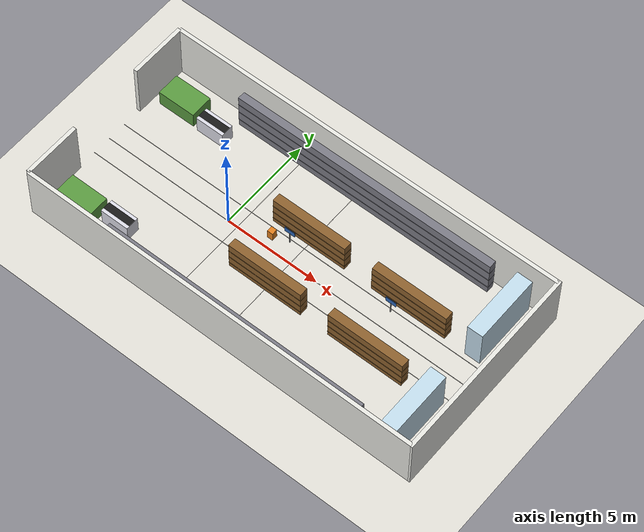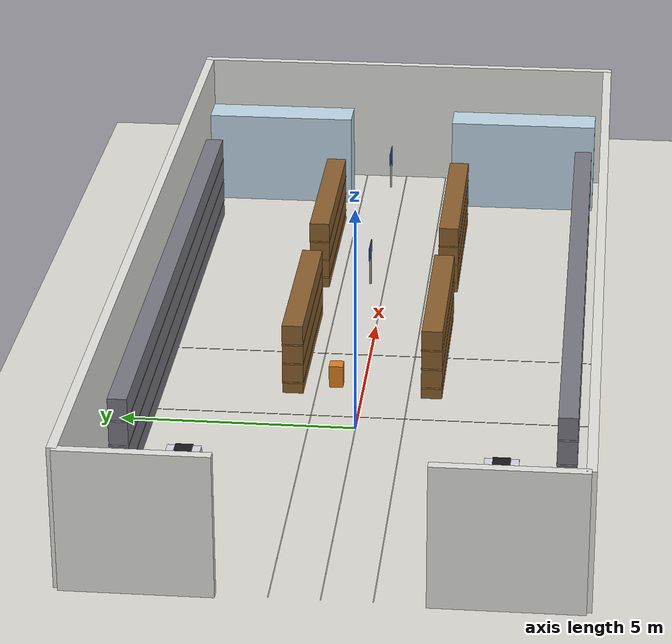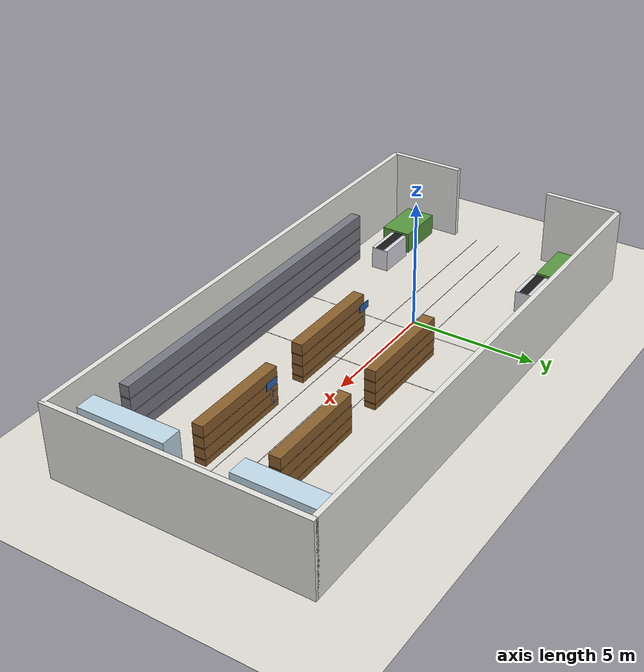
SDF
<?xml version="1.0" ?>
<sdf version="1.10">
  <world name="supermarket">

    <physics name="1ms" type="ignored">
      <max_step_size>0.004</max_step_size>
      <real_time_factor>1.0</real_time_factor>
      <real_time_update_rate>250</real_time_update_rate>
    </physics>

    <plugin filename="gz-sim-physics-system"           name="gz::sim::systems::Physics"/>
    <plugin filename="gz-sim-user-commands-system"     name="gz::sim::systems::UserCommands"/>
    <plugin filename="gz-sim-scene-broadcaster-system" name="gz::sim::systems::SceneBroadcaster"/>
    <plugin filename="gz-sim-sensors-system"           name="gz::sim::systems::Sensors">
      <render_engine>ogre2</render_engine>
    </plugin>
    <plugin filename="gz-sim-contact-system"           name="gz::sim::systems::Contact"/>

    <!-- ── Lighting ──────────────────────────────────────────────────────── -->
    <light type="directional" name="ambient_fill">
      <cast_shadows>false</cast_shadows>
      <pose>0 0 10 0 0 0</pose>
      <diffuse>0.45 0.45 0.45 1</diffuse>
      <specular>0.05 0.05 0.05 1</specular>
      <direction>0 0 -1</direction>
      <attenuation><range>1000</range><constant>0.9</constant><linear>0.01</linear><quadratic>0.001</quadratic></attenuation>
    </light>

    <!-- Ceiling fluorescent strips: 3 along centre + 6 in outer aisles -->
    <light type="point" name="ceil_00"><pose>-4  0   2.8 0 0 0</pose><diffuse>1.0 0.98 0.93 1</diffuse><specular>0.15 0.15 0.15 1</specular><cast_shadows>false</cast_shadows><attenuation><range>14</range><constant>0.35</constant><linear>0.06</linear><quadratic>0.010</quadratic></attenuation></light>
    <light type="point" name="ceil_01"><pose> 2  0   2.8 0 0 0</pose><diffuse>1.0 0.98 0.93 1</diffuse><specular>0.15 0.15 0.15 1</specular><cast_shadows>false</cast_shadows><attenuation><range>14</range><constant>0.35</constant><linear>0.06</linear><quadratic>0.010</quadratic></attenuation></light>
    <light type="point" name="ceil_02"><pose> 8  0   2.8 0 0 0</pose><diffuse>1.0 0.98 0.93 1</diffuse><specular>0.15 0.15 0.15 1</specular><cast_shadows>false</cast_shadows><attenuation><range>14</range><constant>0.35</constant><linear>0.06</linear><quadratic>0.010</quadratic></attenuation></light>
    <light type="point" name="ceil_03"><pose>-4  3.5 2.8 0 0 0</pose><diffuse>1.0 0.98 0.93 1</diffuse><specular>0.15 0.15 0.15 1</specular><cast_shadows>false</cast_shadows><attenuation><range>11</range><constant>0.40</constant><linear>0.07</linear><quadratic>0.012</quadratic></attenuation></light>
    <light type="point" name="ceil_04"><pose> 2  3.5 2.8 0 0 0</pose><diffuse>1.0 0.98 0.93 1</diffuse><specular>0.15 0.15 0.15 1</specular><cast_shadows>false</cast_shadows><attenuation><range>11</range><constant>0.40</constant><linear>0.07</linear><quadratic>0.012</quadratic></attenuation></light>
    <light type="point" name="ceil_05"><pose> 8  3.5 2.8 0 0 0</pose><diffuse>1.0 0.98 0.93 1</diffuse><specular>0.15 0.15 0.15 1</specular><cast_shadows>false</cast_shadows><attenuation><range>11</range><constant>0.40</constant><linear>0.07</linear><quadratic>0.012</quadratic></attenuation></light>
    <light type="point" name="ceil_06"><pose>-4 -3.5 2.8 0 0 0</pose><diffuse>1.0 0.98 0.93 1</diffuse><specular>0.15 0.15 0.15 1</specular><cast_shadows>false</cast_shadows><attenuation><range>11</range><constant>0.40</constant><linear>0.07</linear><quadratic>0.012</quadratic></attenuation></light>
    <light type="point" name="ceil_07"><pose> 2 -3.5 2.8 0 0 0</pose><diffuse>1.0 0.98 0.93 1</diffuse><specular>0.15 0.15 0.15 1</specular><cast_shadows>false</cast_shadows><attenuation><range>11</range><constant>0.40</constant><linear>0.07</linear><quadratic>0.012</quadratic></attenuation></light>
    <light type="point" name="ceil_08"><pose> 8 -3.5 2.8 0 0 0</pose><diffuse>1.0 0.98 0.93 1</diffuse><specular>0.15 0.15 0.15 1</specular><cast_shadows>false</cast_shadows><attenuation><range>11</range><constant>0.40</constant><linear>0.07</linear><quadratic>0.012</quadratic></attenuation></light>

    <!-- ── Ground (cream vinyl tile) ─────────────────────────────────────── -->
    <model name="ground_plane">
      <static>true</static>
      <link name="link">
        <collision name="col">
          <geometry><plane><normal>0 0 1</normal><size>100 100</size></plane></geometry>
          <surface><friction><ode><mu>0.6</mu><mu2>0.6</mu2></ode></friction></surface>
        </collision>
        <visual name="vis">
          <geometry><plane><normal>0 0 1</normal><size>100 100</size></plane></geometry>
          <material><ambient>0.88 0.87 0.84 1</ambient><diffuse>0.88 0.87 0.84 1</diffuse></material>
        </visual>
      </link>
    </model>

    <!-- Tile grout lines (visual only, no collision) -->
    <model name="grout_y0"><static>true</static><pose>3.5  1.0 0.001 0 0 0</pose><link name="l"><visual name="v"><geometry><box><size>21.0 0.02 0.001</size></box></geometry><material><ambient>0.73 0.72 0.69 1</ambient><diffuse>0.73 0.72 0.69 1</diffuse></material></visual></link></model>
    <model name="grout_y1"><static>true</static><pose>3.5  0.0 0.001 0 0 0</pose><link name="l"><visual name="v"><geometry><box><size>21.0 0.02 0.001</size></box></geometry><material><ambient>0.73 0.72 0.69 1</ambient><diffuse>0.73 0.72 0.69 1</diffuse></material></visual></link></model>
    <model name="grout_y2"><static>true</static><pose>3.5 -1.0 0.001 0 0 0</pose><link name="l"><visual name="v"><geometry><box><size>21.0 0.02 0.001</size></box></geometry><material><ambient>0.73 0.72 0.69 1</ambient><diffuse>0.73 0.72 0.69 1</diffuse></material></visual></link></model>
    <model name="grout_x0"><static>true</static><pose>0.5 0 0.001 0 0 1.5708</pose><link name="l"><visual name="v"><geometry><box><size>10.0 0.02 0.001</size></box></geometry><material><ambient>0.73 0.72 0.69 1</ambient><diffuse>0.73 0.72 0.69 1</diffuse></material></visual></link></model>
    <model name="grout_x1"><static>true</static><pose>3.5 0 0.001 0 0 1.5708</pose><link name="l"><visual name="v"><geometry><box><size>10.0 0.02 0.001</size></box></geometry><material><ambient>0.73 0.72 0.69 1</ambient><diffuse>0.73 0.72 0.69 1</diffuse></material></visual></link></model>

    <!-- ── Walls  (X∈[-7,14]  Y∈[-5,5]  H=3.0 m) ────────────────────────── -->
    <model name="left_wall">
      <static>true</static><pose>3.5 5.0 1.5 0 0 0</pose>
      <link name="link">
        <collision name="col"><geometry><box><size>21.0 0.2 3.0</size></box></geometry></collision>
        <visual name="vis"><geometry><box><size>21.0 0.2 3.0</size></box></geometry><material><ambient>0.90 0.90 0.88 1</ambient><diffuse>0.90 0.90 0.88 1</diffuse></material></visual>
      </link>
    </model>

    <model name="right_wall">
      <static>true</static><pose>3.5 -5.0 1.5 0 0 0</pose>
      <link name="link">
        <collision name="col"><geometry><box><size>21.0 0.2 3.0</size></box></geometry></collision>
        <visual name="vis"><geometry><box><size>21.0 0.2 3.0</size></box></geometry><material><ambient>0.90 0.90 0.88 1</ambient><diffuse>0.90 0.90 0.88 1</diffuse></material></visual>
      </link>
    </model>

    <model name="back_wall">
      <static>true</static><pose>14.0 0.0 1.5 0 0 0</pose>
      <link name="link">
        <collision name="col"><geometry><box><size>0.2 10.2 3.0</size></box></geometry></collision>
        <visual name="vis"><geometry><box><size>0.2 10.2 3.0</size></box></geometry><material><ambient>0.90 0.90 0.88 1</ambient><diffuse>0.90 0.90 0.88 1</diffuse></material></visual>
      </link>
    </model>

    <!-- Front wall: two panels with 4 m entrance gap centred at y=0 -->
    <model name="front_wall_left">
      <static>true</static><pose>-7.0 3.5 1.5 0 0 0</pose>
      <link name="link">
        <collision name="col"><geometry><box><size>0.2 3.0 3.0</size></box></geometry></collision>
        <visual name="vis"><geometry><box><size>0.2 3.0 3.0</size></box></geometry><material><ambient>0.90 0.90 0.88 1</ambient><diffuse>0.90 0.90 0.88 1</diffuse></material></visual>
      </link>
    </model>

    <model name="front_wall_right">
      <static>true</static><pose>-7.0 -3.5 1.5 0 0 0</pose>
      <link name="link">
        <collision name="col"><geometry><box><size>0.2 3.0 3.0</size></box></geometry></collision>
        <visual name="vis"><geometry><box><size>0.2 3.0 3.0</size></box></geometry><material><ambient>0.90 0.90 0.88 1</ambient><diffuse>0.90 0.90 0.88 1</diffuse></material></visual>
      </link>
    </model>

    <!-- ── Main aisle shelves ─────────────────────────────────────────────── -->
    <!--  Row A  x=3.5  (4.0 m long x 0.45 m deep x 1.6 m tall)              -->
    <!--  AABB: x∈[1.5,5.5]  y∈[1.275,1.725] and [-1.725,-1.275]             -->

    <model name="shelf_A_left">
      <static>true</static><pose>3.5 1.5 0.8 0 0 0</pose>
      <link name="link">
        <collision name="col"><geometry><box><size>4.0 0.45 1.6</size></box></geometry></collision>
        <visual name="vis"><geometry><box><size>4.0 0.45 1.6</size></box></geometry><material><ambient>0.55 0.38 0.18 1</ambient><diffuse>0.55 0.38 0.18 1</diffuse></material></visual>
      </link>
    </model>
    <model name="shelf_A_left_b1"><static>true</static><pose>3.5 1.5 0.25 0 0 0</pose><link name="l"><visual name="v"><geometry><box><size>4.02 0.46 0.03</size></box></geometry><material><ambient>0.70 0.52 0.25 1</ambient><diffuse>0.70 0.52 0.25 1</diffuse></material></visual></link></model>
    <model name="shelf_A_left_b2"><static>true</static><pose>3.5 1.5 0.70 0 0 0</pose><link name="l"><visual name="v"><geometry><box><size>4.02 0.46 0.03</size></box></geometry><material><ambient>0.70 0.52 0.25 1</ambient><diffuse>0.70 0.52 0.25 1</diffuse></material></visual></link></model>
    <model name="shelf_A_left_b3"><static>true</static><pose>3.5 1.5 1.15 0 0 0</pose><link name="l"><visual name="v"><geometry><box><size>4.02 0.46 0.03</size></box></geometry><material><ambient>0.70 0.52 0.25 1</ambient><diffuse>0.70 0.52 0.25 1</diffuse></material></visual></link></model>

    <model name="shelf_A_right">
      <static>true</static><pose>3.5 -1.5 0.8 0 0 0</pose>
      <link name="link">
        <collision name="col"><geometry><box><size>4.0 0.45 1.6</size></box></geometry></collision>
        <visual name="vis"><geometry><box><size>4.0 0.45 1.6</size></box></geometry><material><ambient>0.55 0.38 0.18 1</ambient><diffuse>0.55 0.38 0.18 1</diffuse></material></visual>
      </link>
    </model>
    <model name="shelf_A_right_b1"><static>true</static><pose>3.5 -1.5 0.25 0 0 0</pose><link name="l"><visual name="v"><geometry><box><size>4.02 0.46 0.03</size></box></geometry><material><ambient>0.70 0.52 0.25 1</ambient><diffuse>0.70 0.52 0.25 1</diffuse></material></visual></link></model>
    <model name="shelf_A_right_b2"><static>true</static><pose>3.5 -1.5 0.70 0 0 0</pose><link name="l"><visual name="v"><geometry><box><size>4.02 0.46 0.03</size></box></geometry><material><ambient>0.70 0.52 0.25 1</ambient><diffuse>0.70 0.52 0.25 1</diffuse></material></visual></link></model>
    <model name="shelf_A_right_b3"><static>true</static><pose>3.5 -1.5 1.15 0 0 0</pose><link name="l"><visual name="v"><geometry><box><size>4.02 0.46 0.03</size></box></geometry><material><ambient>0.70 0.52 0.25 1</ambient><diffuse>0.70 0.52 0.25 1</diffuse></material></visual></link></model>

    <!--  Row B  x=9.0  (same footprint)                                       -->
    <!--  AABB: x∈[7.0,11.0]  y∈[1.275,1.725] and [-1.725,-1.275]            -->

    <model name="shelf_B_left">
      <static>true</static><pose>9.0 1.5 0.8 0 0 0</pose>
      <link name="link">
        <collision name="col"><geometry><box><size>4.0 0.45 1.6</size></box></geometry></collision>
        <visual name="vis"><geometry><box><size>4.0 0.45 1.6</size></box></geometry><material><ambient>0.55 0.38 0.18 1</ambient><diffuse>0.55 0.38 0.18 1</diffuse></material></visual>
      </link>
    </model>
    <model name="shelf_B_left_b1"><static>true</static><pose>9.0 1.5 0.25 0 0 0</pose><link name="l"><visual name="v"><geometry><box><size>4.02 0.46 0.03</size></box></geometry><material><ambient>0.70 0.52 0.25 1</ambient><diffuse>0.70 0.52 0.25 1</diffuse></material></visual></link></model>
    <model name="shelf_B_left_b2"><static>true</static><pose>9.0 1.5 0.70 0 0 0</pose><link name="l"><visual name="v"><geometry><box><size>4.02 0.46 0.03</size></box></geometry><material><ambient>0.70 0.52 0.25 1</ambient><diffuse>0.70 0.52 0.25 1</diffuse></material></visual></link></model>
    <model name="shelf_B_left_b3"><static>true</static><pose>9.0 1.5 1.15 0 0 0</pose><link name="l"><visual name="v"><geometry><box><size>4.02 0.46 0.03</size></box></geometry><material><ambient>0.70 0.52 0.25 1</ambient><diffuse>0.70 0.52 0.25 1</diffuse></material></visual></link></model>

    <model name="shelf_B_right">
      <static>true</static><pose>9.0 -1.5 0.8 0 0 0</pose>
      <link name="link">
        <collision name="col"><geometry><box><size>4.0 0.45 1.6</size></box></geometry></collision>
        <visual name="vis"><geometry><box><size>4.0 0.45 1.6</size></box></geometry><material><ambient>0.55 0.38 0.18 1</ambient><diffuse>0.55 0.38 0.18 1</diffuse></material></visual>
      </link>
    </model>
    <model name="shelf_B_right_b1"><static>true</static><pose>9.0 -1.5 0.25 0 0 0</pose><link name="l"><visual name="v"><geometry><box><size>4.02 0.46 0.03</size></box></geometry><material><ambient>0.70 0.52 0.25 1</ambient><diffuse>0.70 0.52 0.25 1</diffuse></material></visual></link></model>
    <model name="shelf_B_right_b2"><static>true</static><pose>9.0 -1.5 0.70 0 0 0</pose><link name="l"><visual name="v"><geometry><box><size>4.02 0.46 0.03</size></box></geometry><material><ambient>0.70 0.52 0.25 1</ambient><diffuse>0.70 0.52 0.25 1</diffuse></material></visual></link></model>
    <model name="shelf_B_right_b3"><static>true</static><pose>9.0 -1.5 1.15 0 0 0</pose><link name="l"><visual name="v"><geometry><box><size>4.02 0.46 0.03</size></box></geometry><material><ambient>0.70 0.52 0.25 1</ambient><diffuse>0.70 0.52 0.25 1</diffuse></material></visual></link></model>

    <!-- ── Perimeter wall shelves  (y≈±4.5, x∈[-3,11], 14 m long) ──────────
         AABB left:  x∈[-3.0,11.0]  y∈[4.3,4.7]
         AABB right: x∈[-3.0,11.0]  y∈[-4.7,-4.3]                           -->

    <model name="perim_shelf_left">
      <static>true</static><pose>4.0 4.5 1.0 0 0 0</pose>
      <link name="link">
        <collision name="col"><geometry><box><size>14.0 0.4 2.0</size></box></geometry></collision>
        <visual name="vis"><geometry><box><size>14.0 0.4 2.0</size></box></geometry><material><ambient>0.48 0.48 0.52 1</ambient><diffuse>0.48 0.48 0.52 1</diffuse></material></visual>
      </link>
    </model>
    <model name="perim_l_b1"><static>true</static><pose>4.0 4.5 0.40 0 0 0</pose><link name="l"><visual name="v"><geometry><box><size>14.02 0.41 0.03</size></box></geometry><material><ambient>0.65 0.65 0.70 1</ambient><diffuse>0.65 0.65 0.70 1</diffuse></material></visual></link></model>
    <model name="perim_l_b2"><static>true</static><pose>4.0 4.5 0.95 0 0 0</pose><link name="l"><visual name="v"><geometry><box><size>14.02 0.41 0.03</size></box></geometry><material><ambient>0.65 0.65 0.70 1</ambient><diffuse>0.65 0.65 0.70 1</diffuse></material></visual></link></model>
    <model name="perim_l_b3"><static>true</static><pose>4.0 4.5 1.50 0 0 0</pose><link name="l"><visual name="v"><geometry><box><size>14.02 0.41 0.03</size></box></geometry><material><ambient>0.65 0.65 0.70 1</ambient><diffuse>0.65 0.65 0.70 1</diffuse></material></visual></link></model>

    <model name="perim_shelf_right">
      <static>true</static><pose>4.0 -4.5 1.0 0 0 0</pose>
      <link name="link">
        <collision name="col"><geometry><box><size>14.0 0.4 2.0</size></box></geometry></collision>
        <visual name="vis"><geometry><box><size>14.0 0.4 2.0</size></box></geometry><material><ambient>0.48 0.48 0.52 1</ambient><diffuse>0.48 0.48 0.52 1</diffuse></material></visual>
      </link>
    </model>
    <model name="perim_r_b1"><static>true</static><pose>4.0 -4.5 0.40 0 0 0</pose><link name="l"><visual name="v"><geometry><box><size>14.02 0.41 0.03</size></box></geometry><material><ambient>0.65 0.65 0.70 1</ambient><diffuse>0.65 0.65 0.70 1</diffuse></material></visual></link></model>
    <model name="perim_r_b2"><static>true</static><pose>4.0 -4.5 0.95 0 0 0</pose><link name="l"><visual name="v"><geometry><box><size>14.02 0.41 0.03</size></box></geometry><material><ambient>0.65 0.65 0.70 1</ambient><diffuse>0.65 0.65 0.70 1</diffuse></material></visual></link></model>
    <model name="perim_r_b3"><static>true</static><pose>4.0 -4.5 1.50 0 0 0</pose><link name="l"><visual name="v"><geometry><box><size>14.02 0.41 0.03</size></box></geometry><material><ambient>0.65 0.65 0.70 1</ambient><diffuse>0.65 0.65 0.70 1</diffuse></material></visual></link></model>

    <!-- ── Checkout counters  (near entrance, outside main aisle) ─────────
         AABB left:  x∈[-4.25,-2.75]  y∈[2.85,3.55]
         AABB right: x∈[-4.25,-2.75]  y∈[-3.55,-2.85]                       -->

    <model name="checkout_left">
      <static>true</static><pose>-3.5 3.2 0.45 0 0 0</pose>
      <link name="link">
        <collision name="col"><geometry><box><size>1.5 0.7 0.9</size></box></geometry></collision>
        <visual name="vis"><geometry><box><size>1.5 0.7 0.9</size></box></geometry><material><ambient>0.86 0.86 0.90 1</ambient><diffuse>0.86 0.86 0.90 1</diffuse></material></visual>
      </link>
    </model>
    <model name="checkout_left_belt"><static>true</static><pose>-3.5 3.2 0.915 0 0 0</pose><link name="l"><visual name="v"><geometry><box><size>1.5 0.36 0.02</size></box></geometry><material><ambient>0.10 0.10 0.10 1</ambient><diffuse>0.10 0.10 0.10 1</diffuse></material></visual></link></model>

    <model name="checkout_right">
      <static>true</static><pose>-3.5 -3.2 0.45 0 0 0</pose>
      <link name="link">
        <collision name="col"><geometry><box><size>1.5 0.7 0.9</size></box></geometry></collision>
        <visual name="vis"><geometry><box><size>1.5 0.7 0.9</size></box></geometry><material><ambient>0.86 0.86 0.90 1</ambient><diffuse>0.86 0.86 0.90 1</diffuse></material></visual>
      </link>
    </model>
    <model name="checkout_right_belt"><static>true</static><pose>-3.5 -3.2 0.915 0 0 0</pose><link name="l"><visual name="v"><geometry><box><size>1.5 0.36 0.02</size></box></geometry><material><ambient>0.10 0.10 0.10 1</ambient><diffuse>0.10 0.10 0.10 1</diffuse></material></visual></link></model>

    <!-- ── Produce display tables  (near entrance, outer areas) ─────────────
         AABB left:  x∈[-6.5,-4.5]  y∈[2.9,4.1]
         AABB right: x∈[-6.5,-4.5]  y∈[-4.1,-2.9]                          -->

    <model name="produce_table_left">
      <static>true</static><pose>-5.5 3.5 0.425 0 0 0</pose>
      <link name="link">
        <collision name="col"><geometry><box><size>2.0 1.2 0.85</size></box></geometry></collision>
        <visual name="vis"><geometry><box><size>2.0 1.2 0.85</size></box></geometry><material><ambient>0.35 0.60 0.25 1</ambient><diffuse>0.35 0.60 0.25 1</diffuse></material></visual>
      </link>
    </model>

    <model name="produce_table_right">
      <static>true</static><pose>-5.5 -3.5 0.425 0 0 0</pose>
      <link name="link">
        <collision name="col"><geometry><box><size>2.0 1.2 0.85</size></box></geometry></collision>
        <visual name="vis"><geometry><box><size>2.0 1.2 0.85</size></box></geometry><material><ambient>0.35 0.60 0.25 1</ambient><diffuse>0.35 0.60 0.25 1</diffuse></material></visual>
      </link>
    </model>

    <!-- ── Refrigerated cooler units  (near back wall, outside main aisle) ──
         AABB left:  x∈[12.1,12.9]  y∈[1.25,4.75]
         AABB right: x∈[12.1,12.9]  y∈[-4.75,-1.25]                        -->

    <model name="cooler_left">
      <static>true</static><pose>12.5 3.0 1.1 0 0 0</pose>
      <link name="link">
        <collision name="col"><geometry><box><size>0.8 3.5 2.2</size></box></geometry></collision>
        <visual name="vis"><geometry><box><size>0.8 3.5 2.2</size></box></geometry><material><ambient>0.76 0.86 0.92 1</ambient><diffuse>0.76 0.86 0.92 1</diffuse></material></visual>
      </link>
    </model>
    <model name="cooler_left_glass"><static>true</static><pose>12.12 3.0 1.1 0 0 0</pose><link name="l"><visual name="v"><geometry><box><size>0.02 3.3 2.0</size></box></geometry><material><ambient>0.85 0.95 1.0 1</ambient><diffuse>0.85 0.95 1.0 1</diffuse></material></visual></link></model>

    <model name="cooler_right">
      <static>true</static><pose>12.5 -3.0 1.1 0 0 0</pose>
      <link name="link">
        <collision name="col"><geometry><box><size>0.8 3.5 2.2</size></box></geometry></collision>
        <visual name="vis"><geometry><box><size>0.8 3.5 2.2</size></box></geometry><material><ambient>0.76 0.86 0.92 1</ambient><diffuse>0.76 0.86 0.92 1</diffuse></material></visual>
      </link>
    </model>
    <model name="cooler_right_glass"><static>true</static><pose>12.12 -3.0 1.1 0 0 0</pose><link name="l"><visual name="v"><geometry><box><size>0.02 3.3 2.0</size></box></geometry><material><ambient>0.85 0.95 1.0 1</ambient><diffuse>0.85 0.95 1.0 1</diffuse></material></visual></link></model>

    <!-- ── Original mid-aisle obstacle box (PRESERVED) ──────────────────── -->
    <model name="obstacle_box">
      <static>true</static><pose>2.0 0.6 0.25 0 0 0</pose>
      <link name="link">
        <collision name="col"><geometry><box><size>0.3 0.3 0.5</size></box></geometry></collision>
        <visual name="vis"><geometry><box><size>0.3 0.3 0.5</size></box></geometry><material><ambient>0.88 0.50 0.12 1</ambient><diffuse>0.88 0.50 0.12 1</diffuse></material></visual>
      </link>
    </model>

    <!-- ── Ceiling light housings (visual only) ──────────────────────────── -->

    <!-- ── Aisle overhead signs (visual only) ────────────────────────────── -->
    <model name="sign_A_pole"><static>true</static><pose>3.5 0 2.1 0 0 0</pose><link name="l"><visual name="v"><geometry><box><size>0.04 0.04 0.7</size></box></geometry><material><ambient>0.68 0.68 0.68 1</ambient><diffuse>0.68 0.68 0.68 1</diffuse></material></visual></link></model>
    <model name="sign_A_board"><static>true</static><pose>3.5 0 2.55 0 0 0</pose><link name="l"><visual name="v"><geometry><box><size>0.55 0.02 0.28</size></box></geometry><material><ambient>0.18 0.40 0.72 1</ambient><diffuse>0.18 0.40 0.72 1</diffuse></material></visual></link></model>
    <model name="sign_B_pole"><static>true</static><pose>9.0 0 2.1 0 0 0</pose><link name="l"><visual name="v"><geometry><box><size>0.04 0.04 0.7</size></box></geometry><material><ambient>0.68 0.68 0.68 1</ambient><diffuse>0.68 0.68 0.68 1</diffuse></material></visual></link></model>
    <model name="sign_B_board"><static>true</static><pose>9.0 0 2.55 0 0 0</pose><link name="l"><visual name="v"><geometry><box><size>0.55 0.02 0.28</size></box></geometry><material><ambient>0.18 0.40 0.72 1</ambient><diffuse>0.18 0.40 0.72 1</diffuse></material></visual></link></model>

  </world>
</sdf>
